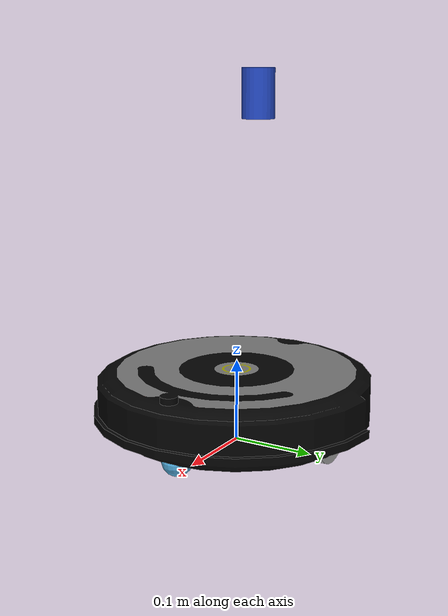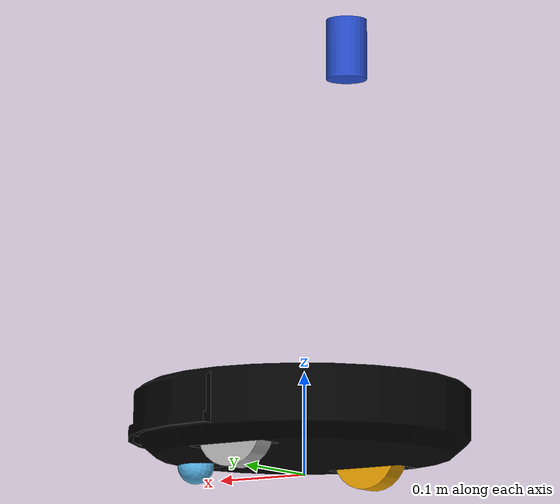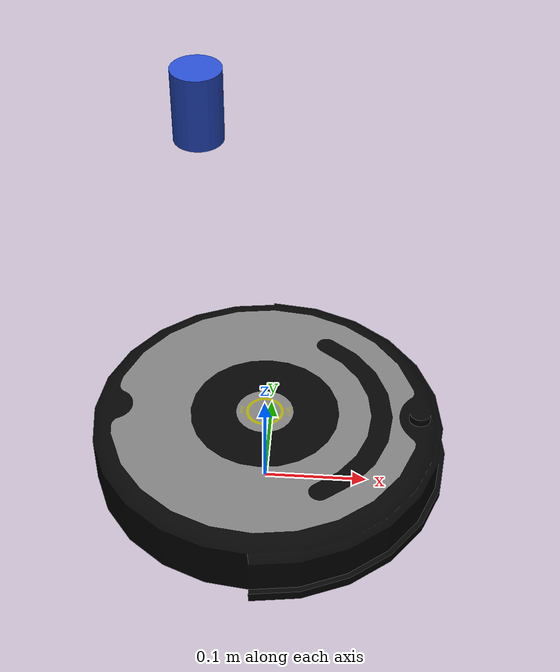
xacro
<?xml version="1.0"?>
<robot name="roomba" xmlns:xacro="http://www.ros.org/wiki/xacro">
  <gazebo>
    <plugin name="gazebo_ros_control" filename="libgazebo_ros_control.so">
      <robotNamespace>/roomba</robotNamespace>
    </plugin>
  </gazebo>

  <!-- Include Base Body -->
  <xacro:include filename="$(find rtw_gazebo)/xacro/roomba/base/create_2.urdf.xacro"/>
  <!-- Include Sensors -->
  <xacro:include filename="$(find rtw_gazebo)/xacro/roomba/sensor/sensor.xacro"/>
</robot>

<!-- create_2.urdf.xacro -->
<robot name="roomba" xmlns:xacro="http://ros.org/wiki/xacro">
  <xacro:include filename="$(find rtw_gazebo)/xacro/roomba/base/create_base.urdf.xacro" />

  <xacro:create_base wheel_separation="0.235" base_diameter="0.3485">
    <mesh filename="package://create_description/meshes/create_2.dae" />
  </xacro:create_base>
</robot>

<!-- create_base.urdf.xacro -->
<robot xmlns:xacro="http://ros.org/wiki/xacro">
  <xacro:property name="PI" value="3.1415926535897931" />

  <xacro:macro name="create_wheel" params="prefix y_offset wheel_radius wheel_width">
    <link name="${prefix}_wheel_link">
    <inertial>
      <origin xyz="0 0 0" />
      <mass value="0.01" />
      <inertia ixx="0.001" ixy="0.0" ixz="0.0" iyy="0.001" iyz="0.0" izz="0.001" />
    </inertial>

    <visual>
      <origin xyz="0 0 0" rpy="0 ${PI/2} ${PI/2}" />
      <geometry>
        <cylinder radius="${wheel_radius}" length="${wheel_width}" />
      </geometry>
    </visual>

    <collision>
      <origin xyz="0 0 0" rpy="0 ${PI/2} ${PI/2}" />
      <geometry>
        <cylinder radius="${wheel_radius}" length="${wheel_width}" />
      </geometry>
    </collision>
    </link>

   <joint name="${prefix}_wheel_joint" type="continuous">
      <origin xyz="0 ${y_offset} 0.015" rpy="0 0 0" />
      <parent link="base_link" />
      <child link="${prefix}_wheel_link" />
      <axis xyz="0 1 0" />
    </joint>

    <transmission name="${prefix}_wheel_trans">
      <type>transmission_interface/SimpleTransmission</type>
      <joint name="${prefix}_wheel_joint">
          <hardwareInterface>hardware_interface/VelocityJointInterface</hardwareInterface>
      </joint>
      <actuator name="${prefix}_wheel_motor">
        <hardwareInterface>hardware_interface/VelocityJointInterface</hardwareInterface>
        <mechanismReduction>1</mechanismReduction>
      </actuator>
    </transmission>
  </xacro:macro>

  <xacro:macro name="create_base" params="diffdrive_update_rate:=40 wheel_separation wheel_radius:=0.036 wheel_width:=0.024 wheel_torque:=1.0 wheel_accel:=1.8 mass_kg:=3.5 base_diameter *mesh">
    <xacro:include filename="$(find create_description)/urdf/create_base_gazebo.urdf.xacro" />

    <link name="base_footprint">
    <visual>
      <origin xyz="0 0 0" rpy="0 0 0" />
      <geometry>
        <box size="0.001 0.001 0.001" />
      </geometry>
      <material name="Green" />
    </visual>

    <collision>
      <origin xyz="0 0 0.017" rpy="0 0 0" />
      <geometry>
        <box size="0.001 0.001 0.001" />
      </geometry>
    </collision>
    </link>

    <link name="base_link">
    <inertial>
      <mass value="2" />
      <origin xyz="0 0 0.0" />
      <inertia ixx="0.01" ixy="0.0" ixz="0.0" iyy="0.01" iyz="0.0" izz="0.5" />
    </inertial>

    <visual>
      <origin xyz=" 0 0 0.0308" rpy="0 0 0" />
      <geometry>
        <xacro:insert_block name="mesh" />
      </geometry>
    </visual>

    <collision>
      <origin xyz="0.0 0.0 0.0308" rpy="0 0 0" />
      <geometry>
        <cylinder length="0.0611632" radius="0.16495" />
      </geometry>
    </collision>
    </link>

    <link name="wall_sensor_link">
    <inertial>
      <mass value="0.01" />
      <origin xyz="0 0 0" />
      <inertia ixx="0.001" ixy="0.0" ixz="0.0" iyy="0.001" iyz="0.0" izz="0.001" />
    </inertial>
    </link>

    <link name="left_cliff_sensor_link">
    <inertial>
      <mass value="0.01" />
      <origin xyz="0 0 0" />
      <inertia ixx="0.001" ixy="0.0" ixz="0.0" iyy="0.001" iyz="0.0" izz="0.001" />
    </inertial>
    </link>

    <link name="right_cliff_sensor_link">
    <inertial>
      <mass value="0.01" />
      <origin xyz="0 0 0" />
      <inertia ixx="0.001" ixy="0.0" ixz="0.0" iyy="0.001" iyz="0.0" izz="0.001" />
    </inertial>
    </link>

    <link name="leftfront_cliff_sensor_link">
    <inertial>
      <mass value="0.01" />
      <origin xyz="0 0 0" />
      <inertia ixx="1.0" ixy="0.0" ixz="0.0" iyy="0.01" iyz="0.0" izz="0.01" />
    </inertial>
    </link>

    <link name="rightfront_cliff_sensor_link">
    <inertial>
      <mass value="0.01" />
      <origin xyz="0 0 0" />
      <inertia ixx="0.001" ixy="0.0" ixz="0.0" iyy="0.001" iyz="0.0" izz="0.001" />
    </inertial>
    </link>

    <joint name="base_footprint_joint" type="fixed">
      <origin xyz="0 0 0.017" rpy="0 0 0" />
      <parent link="base_footprint" />
      <child link="base_link" />
    </joint>

    <joint name="base_wall_sensor_joint" type="fixed">
      <origin xyz="0.09 -0.120 0.042" rpy="0 0 -1.0" />
      <parent link="base_link" />
      <child link="wall_sensor_link" />
    </joint>

    <joint name="base_left_cliff_sensor_joint" type="fixed">
      <origin xyz="0.07 0.14 0.01" rpy="0 ${PI/2} 0" />
      <parent link="base_link" />
      <child link="left_cliff_sensor_link" />
    </joint>

    <joint name="base_right_cliff_sensor_joint" type="fixed">
      <origin xyz="0.07 -0.14 0.01" rpy="0 ${PI/2} 0" />
      <parent link="base_link" />
      <child link="right_cliff_sensor_link" />
    </joint>

    <joint name="base_leftfront_cliff_sensor_joint" type="fixed">
      <origin xyz="0.15 0.04 0.01" rpy="0 ${PI/2} 0" />
      <parent link="base_link" />
      <child link="leftfront_cliff_sensor_link" />
    </joint>

    <joint name="base_rightfront_cliff_sensor_joint" type="fixed">
      <origin xyz="0.15 -0.04 0.01" rpy="0 ${PI/2} 0" />
      <parent link="base_link" />
      <child link="rightfront_cliff_sensor_link" />
    </joint>

    <xacro:create_wheel prefix="left" y_offset="${wheel_separation / 2}" wheel_radius="${wheel_radius}" wheel_width="${wheel_width}"/>
    <xacro:create_wheel prefix="right" y_offset="${wheel_separation / -2}" wheel_radius="${wheel_radius}" wheel_width="${wheel_width}"/>

    <link name="front_wheel_link">
    <inertial>
      <origin xyz="0 0 0" />
      <mass value="0.01" />
      <inertia ixx="0.001" ixy="0.0" ixz="0.0" iyy="0.001" iyz="0.0" izz="0.001" />
    </inertial>

    <visual>
      <origin xyz="0 0 0" rpy="0 ${PI/2} ${PI/2}" />
      <geometry>
        <sphere radius="0.018" />
      </geometry>
    </visual>

    <collision>
      <origin xyz="0 0 0" rpy="0 ${PI/2} ${PI/2}" />
      <geometry>
        <sphere radius="0.018" />
      </geometry>
    </collision>
    </link>

    <!-- fixed because there's no transmission -->
    <joint name="front_castor_joint" type="fixed">
      <origin xyz="0.13 0 0.0" rpy="0 0 0" />
      <parent link="base_link" />
      <child link="front_wheel_link" />
      <axis xyz="0 1 0" />
    </joint>

    <joint name="gyro_joint" type="fixed">
      <axis xyz="0 1 0" />
      <origin xyz="0 0 0.04" rpy="0 0 0" />
      <parent link="base_link" />
      <child link="gyro_link" />
    </joint>
    <link name="gyro_link">
    <inertial>
      <mass value="0.001" />
      <origin xyz="0 0 0" rpy="0 0 0" />
      <inertia ixx="0.0001" ixy="0" ixz="0" iyy="0.000001" iyz="0" izz="0.0001" />
    </inertial>
    </link>

    <!-- Simulation sensors -->
    <xacro:sim_create_base/>
    <xacro:sim_create_wall_sensor/>
    <xacro:sim_create_cliff_sensors/>
    <xacro:sim_imu/>
  </xacro:macro>
</robot>

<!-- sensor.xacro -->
<robot name="roomba" xmlns:xacro="http://www.ros.org/wiki/xacro">

  <!-- Include sensor macros -->
  <xacro:include filename="$(find rtw_gazebo)/xacro/roomba/sensor/camera/camera.xacro" />
  <xacro:include filename="$(find rtw_gazebo)/xacro/roomba/sensor/imu/imu.xacro" />
  <xacro:include filename="$(find rtw_gazebo)/xacro/roomba/sensor/2d_lidar/2d_lidar.xacro" />
  <xacro:include filename="$(find rtw_gazebo)/xacro/roomba/sensor/3d_lidar/3d_lidar.xacro" />

  <!-- Enable Flag -->
  <xacro:arg name="camera_enabled" default="true" />
  <xacro:arg name="imu_enabled" default="false" />
  <xacro:arg name="2dlidar_enabled" default="true" />
  <xacro:arg name="3dlidar_enabled" default="false" />

  <!-- ADD SENSORS -->
  <!-- Camera -->
  <xacro:if value="$(arg camera_enabled)">
    <xacro:camera_macro prefix="camera" parent="base_link" xyz="-0.05 0 0.3"/>
  </xacro:if>
  <!-- IMU -->
  <xacro:if value="$(arg imu_enabled)">
    <xacro:imu_macro prefix="imu" parent="base_link" xyz="-0.05 0 0"/>
  </xacro:if>
  <!-- 2D LIDAR -->
  <xacro:if value="$(arg 2dlidar_enabled)">
    <xacro:lidar_2d_macro prefix="lidar" parent="base_link" xyz="-0.05 0 0.4"/>
  </xacro:if>
  <!-- 3D LIDAR -->
  <xacro:if value="$(arg 3dlidar_enabled)">
    <xacro:velodyne_vlp16 parent="base_link" xyz="-0.05 0 0.2"/>
  </xacro:if>
</robot>

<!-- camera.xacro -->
<robot xmlns:xacro="http://www.ros.org/wiki/xacro">
  <xacro:macro name="camera_macro" params="parent prefix xyz">
    <joint name="${prefix}_joint" type="fixed">
      <parent link="${parent}"/>
      <child  link="${prefix}_link"/>
      <origin xyz="${xyz}" rpy="${radians(-90)} 0 ${radians(-90)}"/>
    </joint>
    <link name="${prefix}_link"/>
    <gazebo reference="${prefix}_link">
      <sensor type="camera" name="${prefix}">
        <update_rate>10.0</update_rate>
        <camera name="${prefix}">
          <pose>0 0 0 0 ${radians(-90)} ${radians(90)}</pose>
          <horizontal_fov>1.3962634</horizontal_fov>
          <image>
            <width>800</width>
            <height>600</height>
            <format>R8G8B8</format>
          </image>
          <clip>
            <near>0.02</near>
            <far>300</far>
          </clip>
          <noise>
            <type>gaussian</type>
            <mean>0.0</mean>
            <stddev>0.007</stddev>
          </noise>
        </camera>
        <plugin name="camera_controller" filename="libgazebo_ros_camera.so">
          <alwaysOn>true</alwaysOn>
          <updateRate>0.0</updateRate>
          <cameraName>${prefix}</cameraName>
          <imageTopicName>image_raw</imageTopicName>
          <cameraInfoTopicName>camera_info</cameraInfoTopicName>
          <frameName>${prefix}_link</frameName>
          <hackBaseline>0.07</hackBaseline>
          <distortionK1>0.0</distortionK1>
          <distortionK2>0.0</distortionK2>
          <distortionK3>0.0</distortionK3>
          <distortionT1>0.0</distortionT1>
          <distortionT2>0.0</distortionT2>
        </plugin>
      </sensor>
    </gazebo>
  </xacro:macro>
</robot>

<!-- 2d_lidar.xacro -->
<robot xmlns:xacro="http://www.ros.org/wiki/xacro">
  <xacro:macro name="lidar_2d_macro" params="parent prefix xyz">
    <joint name="${prefix}_joint" type="fixed">
      <parent link="${parent}"/>
      <child  link="${prefix}_link"/>
      <origin xyz="${xyz}" rpy="0 0 0"/>
    </joint>
    <link name="${prefix}_link">
      <visual>
        <origin xyz="0 0 0" rpy="0 0 0" />
        <geometry>
          <cylinder radius="0.02" length="0.06" />
        </geometry>
        <material name="blue" />
      </visual>
      <collision>
        <origin xyz="0 0 0" rpy="0 0 0"/>
        <geometry>
          <cylinder radius="0.02" length="0.06" />
        </geometry>
      </collision>
    </link>
    <gazebo reference="${prefix}_link">
      <material>Gazebo/Blue</material>
      <sensor type="ray" name="${prefix}">
        <pose>0 0 0 0 0 0</pose>
        <visualize>false</visualize>
        <update_rate>10</update_rate>
        <ray>
          <scan>
            <horizontal>
              <samples>400</samples>
              <resolution>1</resolution>
              <min_angle>${radians(-180)}</min_angle>
              <max_angle>${radians( 180)}</max_angle>
            </horizontal>
          </scan>
          <range>
            <min>0.10</min>
            <max>20.0</max>
            <resolution>0.01</resolution>
          </range>
          <noise>
            <type>gaussian</type>
            <mean>0.0</mean>
            <stddev>0.01</stddev>
          </noise>
        </ray>
        <plugin name="gazebo_ros_lidar_controller" filename="libgazebo_ros_laser.so">
          <topicName>/scan</topicName>
          <frameName>${prefix}_link</frameName>
        </plugin>
      </sensor>
    </gazebo>
  </xacro:macro>
</robot>
